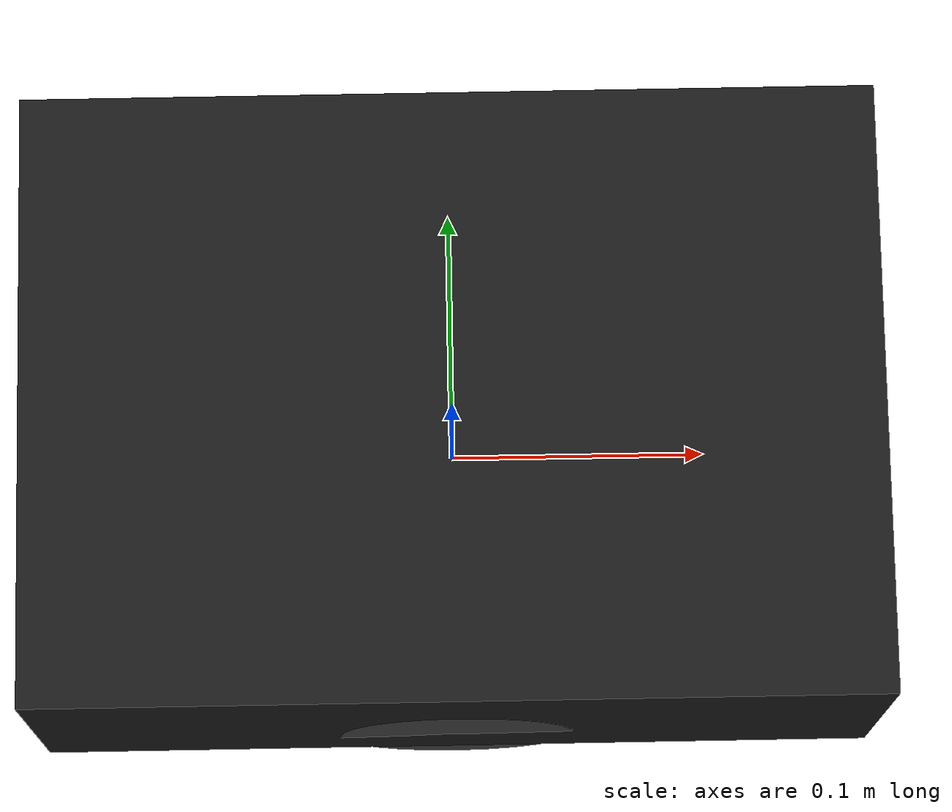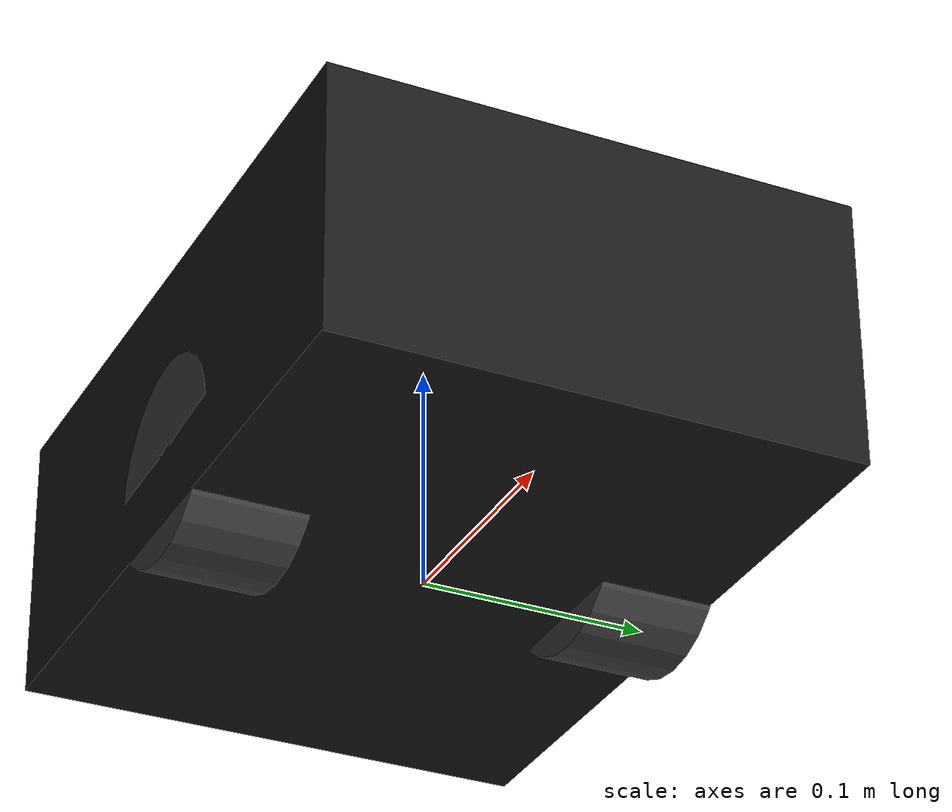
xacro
<?xml version="1.0"?>
<robot name="tank_bot" xmlns:xacro="http://www.ros.org/wiki/xacro">

  <!--                    PROPERTIES                    -->
  <xacro:property name="chassis_length" value="0.32"/>
  <xacro:property name="chassis_width"  value="0.23"/>
  <xacro:property name="chassis_height" value="0.12"/>

  <xacro:property name="track_radius" value="0.045"/>
  <xacro:property name="track_width"  value="0.05"/>
  <xacro:property name="track_offset_y" value="0.09"/>
  <xacro:property name="track_z" value="0.03"/>

  <xacro:property name="base_mass" value="4.5"/>
  <xacro:property name="track_mass" value="0.5"/>

  <!--                  BASE FOOTPRINT                   -->
  <link name="base_footprint">
    <visual>
      <origin xyz="0 0 0"/>
      <geometry>
        <sphere radius="0.001"/>
      </geometry>
      <material name="invisible">
        <color rgba="0 0 0 0"/>
      </material>
    </visual>
  </link>

  <joint name="base_footprint_to_base_link" type="fixed">
    <parent link="base_footprint"/>
    <child link="base_link"/>
    <origin xyz="0 0 0"/>
  </joint>

  <!--                    BASE LINK                     -->
  <link name="base_link">
    <visual>
      <origin xyz="0 0 ${chassis_height/2}"/>
      <geometry>
        <box size="${chassis_length} ${chassis_width} ${chassis_height}"/>
      </geometry>
      <material name="black">
        <color rgba="0.1 0.1 0.1 1.0"/>
      </material>
    </visual>

    <collision>
      <origin xyz="0 0 ${chassis_height/2}"/>
      <geometry>
        <box size="${chassis_length} ${chassis_width} ${chassis_height}"/>
      </geometry>
    </collision>

    <inertial>
      <origin xyz="0 0 ${chassis_height/2}"/>
      <mass value="${base_mass}"/>
      <inertia
        ixx="0.05"
        iyy="0.09"
        izz="0.11"
        ixy="0"
        ixz="0"
        iyz="0"/>
    </inertial>
  </link>

  <!--                 TRACK MACRO                      -->
  <xacro:macro name="track" params="name y_offset">

    <link name="${name}">
      <visual>
        <origin rpy="1.5708 0 0"/>
        <geometry>
          <cylinder radius="${track_radius}" length="${track_width}"/>
        </geometry>
        <material name="dark_grey">
          <color rgba="0.25 0.25 0.25 1.0"/>
        </material>
      </visual>

      <collision>
        <origin rpy="1.5708 0 0"/>
        <geometry>
          <cylinder radius="${track_radius}" length="${track_width}"/>
        </geometry>
      </collision>

      <inertial>
        <mass value="${track_mass}"/>
        <inertia ixx="0.001" iyy="0.001" izz="0.001"
                 ixy="0" ixz="0" iyz="0"/>
      </inertial>
    </link>

    <joint name="${name}_joint" type="continuous">
      <parent link="base_link"/>
      <child link="${name}"/>
      <origin xyz="0 ${y_offset} ${track_z}"/>
      <axis xyz="0 1 0"/>
    </joint>

  </xacro:macro>

  <!--              INSTANTIATE TRACKS                  -->
  <xacro:track name="left_track"  y_offset="${ track_offset_y}"/>
  <xacro:track name="right_track" y_offset="${-track_offset_y}"/>

  <!--                   GAZEBO PLUGINS                  -->
  <gazebo>
    <plugin name="gazebo_ros_control" filename="libgazebo_ros2_control.so">
      <robotNamespace>/</robotNamespace>
      <robotParam>robot_description</robotParam>
    </plugin>

    <plugin name="gazebo_ros_diff_drive" filename="libgazebo_ros_diff_drive.so">
      <ros>
        <namespace>/</namespace>
        <argument>cmd_vel:=/cmd_vel</argument>
      </ros>

      <left_joint>left_track_joint</left_joint>
      <right_joint>right_track_joint</right_joint>

      <wheel_separation>0.18</wheel_separation>
      <wheel_diameter>0.09</wheel_diameter>

      <wheel_accel>1.0</wheel_accel>
      <wheel_torque>5.0</wheel_torque>

      <update_rate>50</update_rate>
    </plugin>
  </gazebo>

</robot>
